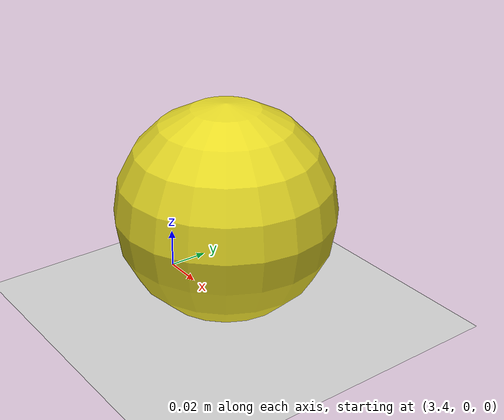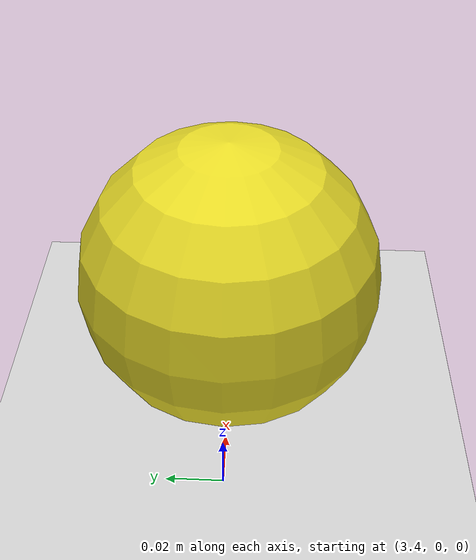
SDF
<sdf version="1.5">
 <world name="default">
  <model name="ground_plane">
   <static>1</static>
   <link name="link">
    <collision name="collision">
     <geometry><plane><normal>0 0 1</normal><size>100 100</size></plane></geometry>
     <surface><friction><ode><mu>100</mu><mu2>50</mu2></ode></friction></surface>
    </collision>
    <visual name="visual">
     <cast_shadows>0</cast_shadows>
     <geometry><plane><normal>0 0 1</normal><size>100 100</size></plane></geometry>
     <material>
      <script><uri>file://media/materials/scripts/gazebo.material</uri><name>Gazebo/Grey</name></script>
     </material>
    </visual>
   </link>
  </model>
  <model name="unit_sphere_1">
   <plugin filename="libball_throwing.so" name="ball_throwing"/>
   <pose>3.44823 0 0.053091 0 -0 0</pose>
   <link name="link">
    <inertial>
     <mass>1</mass>
     <inertia><ixx>1</ixx><ixy>0</ixy><ixz>0</ixz><iyy>1</iyy><iyz>0</iyz><izz>1</izz></inertia>
    </inertial>
    <collision name="collision"><geometry><sphere><radius>0.0530914</radius></sphere></geometry></collision>
    <visual name="visual">
     <geometry><sphere><radius>0.0530914</radius></sphere></geometry>
     <material>
      <script><uri>file://media/materials/scripts/gazebo.material</uri><name>Gazebo/Yellow</name></script>
     </material>
    </visual>
   </link>
  </model>
 </world>
</sdf>
